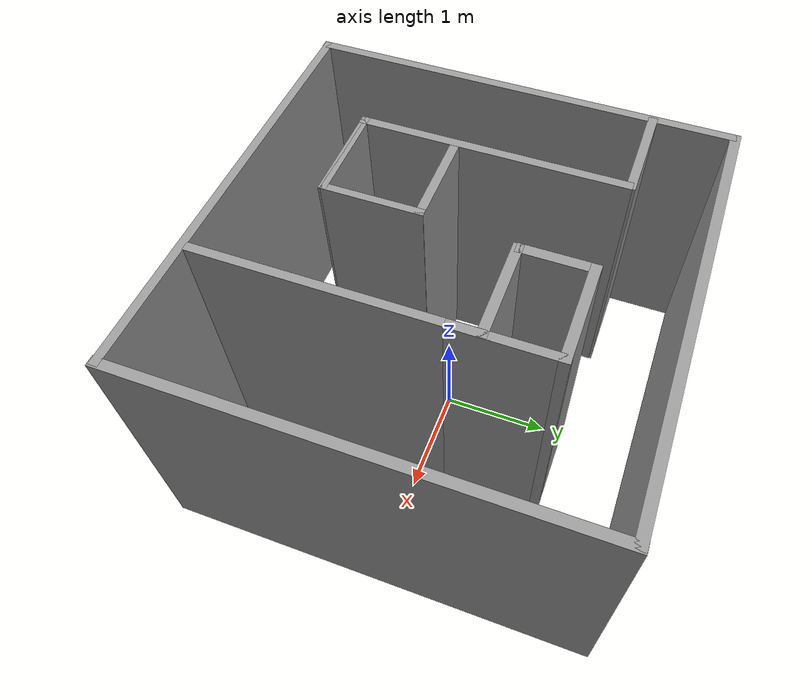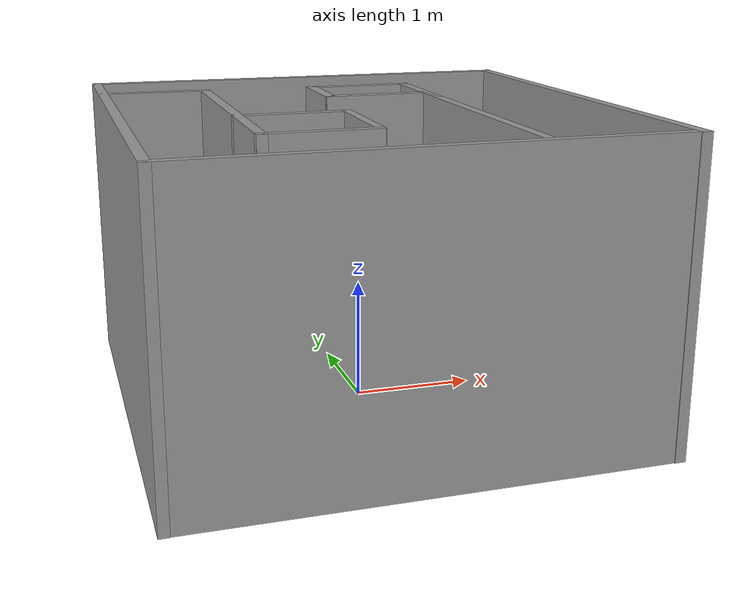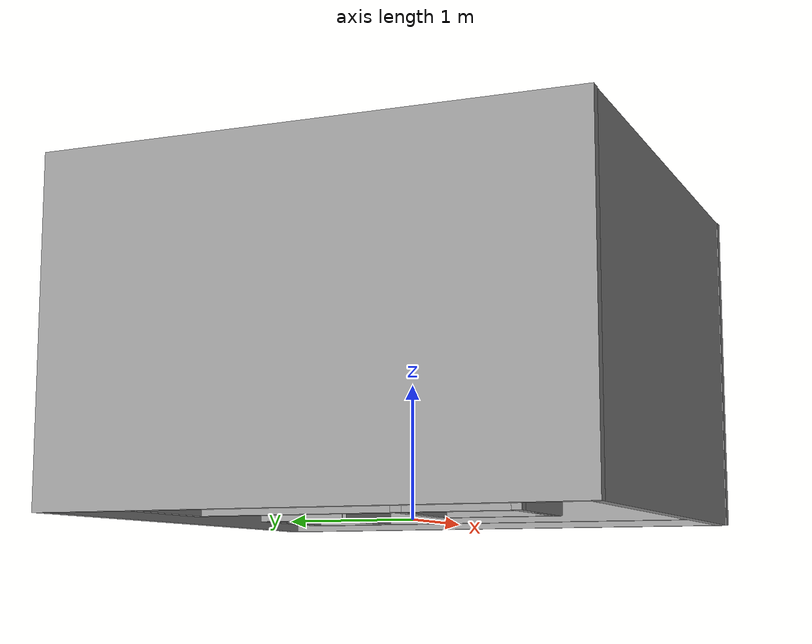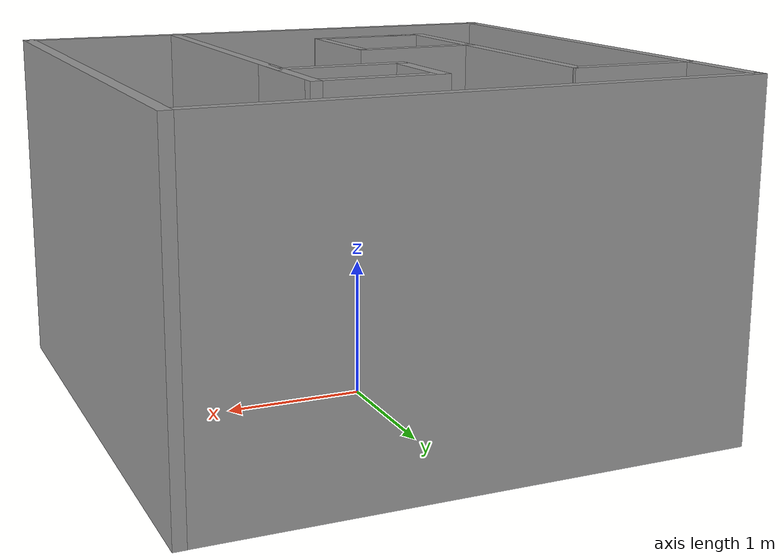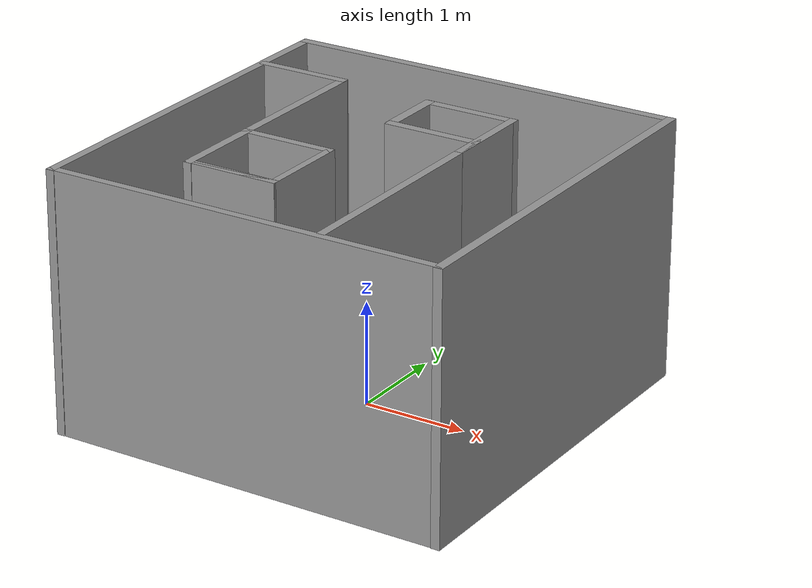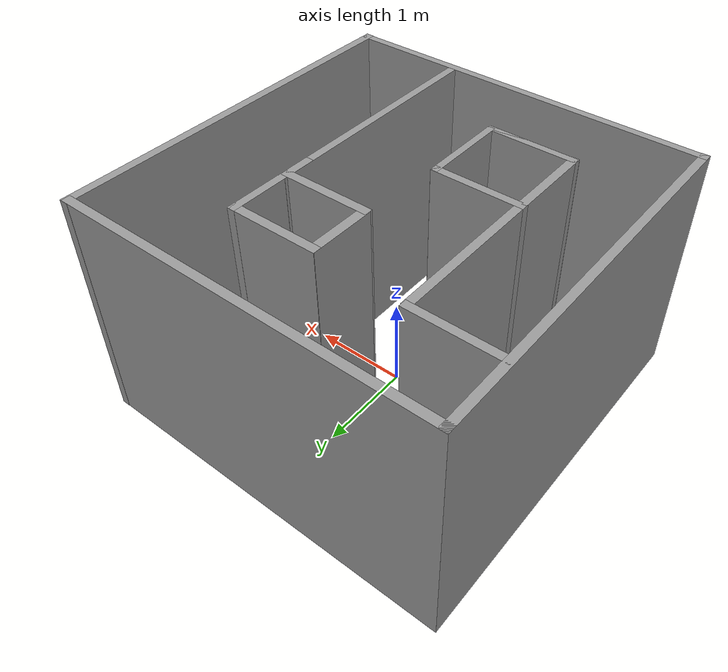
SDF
<?xml version='1.0'?>
<sdf version='1.7'>
  <model name='4x4_map'>
    <link name='Wall_13'>
      <pose>0 1.925 0 0 -0 0</pose>
      <self_collide>0</self_collide>
      <enable_wind>0</enable_wind>
      <kinematic>0</kinematic>
      <inertial>
        <inertia>
          <ixx>0</ixx>
          <ixy>0</ixy>
          <ixz>0</ixz>
          <iyy>0</iyy>
          <iyz>0</iyz>
          <izz>0</izz>
        </inertia>
        <mass>0</mass>
        <pose>0 0 0 0 -0 0</pose>
      </inertial>
      <visual name='Wall_13_Visual'>
        <pose>0 0 1.25 0 -0 0</pose>
        <geometry>
          <box>
            <size>3.9126 0.08902 2.5</size>
          </box>
        </geometry>
        <material>
          <script>
            <uri>file://media/materials/scripts/gazebo.material</uri>
            <name>Gazebo/Grey</name>
          </script>
          <ambient>1 1 1 1</ambient>
          <shader type='pixel'/>
        </material>
        <meta>
          <layer>0</layer>
        </meta>
        <transparency>0</transparency>
        <cast_shadows>1</cast_shadows>
      </visual>
      <collision name='Wall_13_Collision'>
        <laser_retro>0</laser_retro>
        <max_contacts>10</max_contacts>
        <pose>0 0 1.25 0 -0 0</pose>
        <geometry>
          <box>
            <size>3.9126 0.08902 2.5</size>
          </box>
        </geometry>
        <surface>
          <friction>
            <ode>
              <mu>1</mu>
              <mu2>1</mu2>
              <fdir1>0 0 0</fdir1>
              <slip1>0</slip1>
              <slip2>0</slip2>
            </ode>
            <torsional>
              <coefficient>1</coefficient>
              <patch_radius>0</patch_radius>
              <surface_radius>0</surface_radius>
              <use_patch_radius>1</use_patch_radius>
              <ode>
                <slip>0</slip>
              </ode>
            </torsional>
          </friction>
          <bounce>
            <restitution_coefficient>0</restitution_coefficient>
            <threshold>1e+06</threshold>
          </bounce>
          <contact>
            <collide_without_contact>0</collide_without_contact>
            <collide_without_contact_bitmask>1</collide_without_contact_bitmask>
            <collide_bitmask>1</collide_bitmask>
            <ode>
              <soft_cfm>0</soft_cfm>
              <soft_erp>0.2</soft_erp>
              <kp>1e+13</kp>
              <kd>1</kd>
              <max_vel>0.01</max_vel>
              <min_depth>0</min_depth>
            </ode>
            <bullet>
              <split_impulse>1</split_impulse>
              <split_impulse_penetration_threshold>-0.01</split_impulse_penetration_threshold>
              <soft_cfm>0</soft_cfm>
              <soft_erp>0.2</soft_erp>
              <kp>1e+13</kp>
              <kd>1</kd>
            </bullet>
          </contact>
        </surface>
      </collision>
    </link>
    <link name='Wall_15'>
      <pose>-1.91517 0 0 0 0 -1.5708</pose>
      <self_collide>0</self_collide>
      <enable_wind>0</enable_wind>
      <kinematic>0</kinematic>
      <inertial>
        <inertia>
          <ixx>0</ixx>
          <ixy>0</ixy>
          <ixz>0</ixz>
          <iyy>0</iyy>
          <iyz>0</iyz>
          <izz>0</izz>
        </inertia>
        <mass>0</mass>
        <pose>0 0 0 0 -0 0</pose>
      </inertial>
      <visual name='Wall_15_Visual'>
        <pose>0 0 1.25 0 -0 0</pose>
        <geometry>
          <box>
            <size>3.93883 0.082926 2.5</size>
          </box>
        </geometry>
        <material>
          <script>
            <uri>file://media/materials/scripts/gazebo.material</uri>
            <name>Gazebo/Grey</name>
          </script>
          <ambient>1 1 1 1</ambient>
          <shader type='pixel'/>
        </material>
        <meta>
          <layer>0</layer>
        </meta>
        <transparency>0</transparency>
        <cast_shadows>1</cast_shadows>
      </visual>
      <collision name='Wall_15_Collision'>
        <laser_retro>0</laser_retro>
        <max_contacts>10</max_contacts>
        <pose>0 0 1.25 0 -0 0</pose>
        <geometry>
          <box>
            <size>3.93883 0.082926 2.5</size>
          </box>
        </geometry>
        <surface>
          <friction>
            <ode>
              <mu>1</mu>
              <mu2>1</mu2>
              <fdir1>0 0 0</fdir1>
              <slip1>0</slip1>
              <slip2>0</slip2>
            </ode>
            <torsional>
              <coefficient>1</coefficient>
              <patch_radius>0</patch_radius>
              <surface_radius>0</surface_radius>
              <use_patch_radius>1</use_patch_radius>
              <ode>
                <slip>0</slip>
              </ode>
            </torsional>
          </friction>
          <bounce>
            <restitution_coefficient>0</restitution_coefficient>
            <threshold>1e+06</threshold>
          </bounce>
          <contact>
            <collide_without_contact>0</collide_without_contact>
            <collide_without_contact_bitmask>1</collide_without_contact_bitmask>
            <collide_bitmask>1</collide_bitmask>
            <ode>
              <soft_cfm>0</soft_cfm>
              <soft_erp>0.2</soft_erp>
              <kp>1e+13</kp>
              <kd>1</kd>
              <max_vel>0.01</max_vel>
              <min_depth>0</min_depth>
            </ode>
            <bullet>
              <split_impulse>1</split_impulse>
              <split_impulse_penetration_threshold>-0.01</split_impulse_penetration_threshold>
              <soft_cfm>0</soft_cfm>
              <soft_erp>0.2</soft_erp>
              <kp>1e+13</kp>
              <kd>1</kd>
            </bullet>
          </contact>
        </surface>
      </collision>
    </link>
    <link name='Wall_17'>
      <pose>0 -1.925 0 0 -0 0</pose>
      <self_collide>0</self_collide>
      <enable_wind>0</enable_wind>
      <kinematic>0</kinematic>
      <inertial>
        <inertia>
          <ixx>0</ixx>
          <ixy>0</ixy>
          <ixz>0</ixz>
          <iyy>0</iyy>
          <iyz>0</iyz>
          <izz>0</izz>
        </inertia>
        <mass>0</mass>
        <pose>0 0 0 0 -0 0</pose>
      </inertial>
      <visual name='Wall_17_Visual'>
        <pose>0 0 1.25 0 -0 0</pose>
        <geometry>
          <box>
            <size>3.90901 0.078188 2.5</size>
          </box>
        </geometry>
        <material>
          <script>
            <uri>file://media/materials/scripts/gazebo.material</uri>
            <name>Gazebo/Grey</name>
          </script>
          <ambient>1 1 1 1</ambient>
          <shader type='pixel'/>
        </material>
        <meta>
          <layer>0</layer>
        </meta>
        <transparency>0</transparency>
        <cast_shadows>1</cast_shadows>
      </visual>
      <collision name='Wall_17_Collision'>
        <laser_retro>0</laser_retro>
        <max_contacts>10</max_contacts>
        <pose>0 0 1.25 0 -0 0</pose>
        <geometry>
          <box>
            <size>3.90901 0.078188 2.5</size>
          </box>
        </geometry>
        <surface>
          <friction>
            <ode>
              <mu>1</mu>
              <mu2>1</mu2>
              <fdir1>0 0 0</fdir1>
              <slip1>0</slip1>
              <slip2>0</slip2>
            </ode>
            <torsional>
              <coefficient>1</coefficient>
              <patch_radius>0</patch_radius>
              <surface_radius>0</surface_radius>
              <use_patch_radius>1</use_patch_radius>
              <ode>
                <slip>0</slip>
              </ode>
            </torsional>
          </friction>
          <bounce>
            <restitution_coefficient>0</restitution_coefficient>
            <threshold>1e+06</threshold>
          </bounce>
          <contact>
            <collide_without_contact>0</collide_without_contact>
            <collide_without_contact_bitmask>1</collide_without_contact_bitmask>
            <collide_bitmask>1</collide_bitmask>
            <ode>
              <soft_cfm>0</soft_cfm>
              <soft_erp>0.2</soft_erp>
              <kp>1e+13</kp>
              <kd>1</kd>
              <max_vel>0.01</max_vel>
              <min_depth>0</min_depth>
            </ode>
            <bullet>
              <split_impulse>1</split_impulse>
              <split_impulse_penetration_threshold>-0.01</split_impulse_penetration_threshold>
              <soft_cfm>0</soft_cfm>
              <soft_erp>0.2</soft_erp>
              <kp>1e+13</kp>
              <kd>1</kd>
            </bullet>
          </contact>
        </surface>
      </collision>
    </link>
    <link name='Wall_19'>
      <pose>1.925 0 0 0 0 -1.5708</pose>
      <self_collide>0</self_collide>
      <enable_wind>0</enable_wind>
      <kinematic>0</kinematic>
      <inertial>
        <inertia>
          <ixx>0</ixx>
          <ixy>0</ixy>
          <ixz>0</ixz>
          <iyy>0</iyy>
          <iyz>0</iyz>
          <izz>0</izz>
        </inertia>
        <mass>0</mass>
        <pose>0 0 0 0 -0 0</pose>
      </inertial>
      <visual name='Wall_19_Visual'>
        <pose>0 0 1.25 0 -0 0</pose>
        <geometry>
          <box>
            <size>3.94266 0.08936 2.5</size>
          </box>
        </geometry>
        <material>
          <script>
            <uri>file://media/materials/scripts/gazebo.material</uri>
            <name>Gazebo/Grey</name>
          </script>
          <ambient>1 1 1 1</ambient>
          <shader type='pixel'/>
        </material>
        <meta>
          <layer>0</layer>
        </meta>
        <transparency>0</transparency>
        <cast_shadows>1</cast_shadows>
      </visual>
      <collision name='Wall_19_Collision'>
        <laser_retro>0</laser_retro>
        <max_contacts>10</max_contacts>
        <pose>0 0 1.25 0 -0 0</pose>
        <geometry>
          <box>
            <size>3.94266 0.08936 2.5</size>
          </box>
        </geometry>
        <surface>
          <friction>
            <ode>
              <mu>1</mu>
              <mu2>1</mu2>
              <fdir1>0 0 0</fdir1>
              <slip1>0</slip1>
              <slip2>0</slip2>
            </ode>
            <torsional>
              <coefficient>1</coefficient>
              <patch_radius>0</patch_radius>
              <surface_radius>0</surface_radius>
              <use_patch_radius>1</use_patch_radius>
              <ode>
                <slip>0</slip>
              </ode>
            </torsional>
          </friction>
          <bounce>
            <restitution_coefficient>0</restitution_coefficient>
            <threshold>1e+06</threshold>
          </bounce>
          <contact>
            <collide_without_contact>0</collide_without_contact>
            <collide_without_contact_bitmask>1</collide_without_contact_bitmask>
            <collide_bitmask>1</collide_bitmask>
            <ode>
              <soft_cfm>0</soft_cfm>
              <soft_erp>0.2</soft_erp>
              <kp>1e+13</kp>
              <kd>1</kd>
              <max_vel>0.01</max_vel>
              <min_depth>0</min_depth>
            </ode>
            <bullet>
              <split_impulse>1</split_impulse>
              <split_impulse_penetration_threshold>-0.01</split_impulse_penetration_threshold>
              <soft_cfm>0</soft_cfm>
              <soft_erp>0.2</soft_erp>
              <kp>1e+13</kp>
              <kd>1</kd>
            </bullet>
          </contact>
        </surface>
      </collision>
    </link>
    <link name='Wall_23'>
      <pose>-1.04066 0.009699 0 0 -0 1.5708</pose>
      <self_collide>0</self_collide>
      <enable_wind>0</enable_wind>
      <kinematic>0</kinematic>
      <inertial>
        <inertia>
          <ixx>0</ixx>
          <ixy>0</ixy>
          <ixz>0</ixz>
          <iyy>0</iyy>
          <iyz>0</iyz>
          <izz>0</izz>
        </inertia>
        <mass>0</mass>
        <pose>0 0 0 0 -0 0</pose>
      </inertial>
      <visual name='Wall_23_Visual'>
        <pose>0 0 1.25 0 -0 0</pose>
        <geometry>
          <box>
            <size>2.42952 0.083868 2.5</size>
          </box>
        </geometry>
        <material>
          <script>
            <uri>file://media/materials/scripts/gazebo.material</uri>
            <name>Gazebo/Grey</name>
          </script>
          <ambient>1 1 1 1</ambient>
          <shader type='pixel'/>
        </material>
        <meta>
          <layer>0</layer>
        </meta>
        <transparency>0</transparency>
        <cast_shadows>1</cast_shadows>
      </visual>
      <collision name='Wall_23_Collision'>
        <laser_retro>0</laser_retro>
        <max_contacts>10</max_contacts>
        <pose>0 0 1.25 0 -0 0</pose>
        <geometry>
          <box>
            <size>2.42952 0.083868 2.5</size>
          </box>
        </geometry>
        <surface>
          <friction>
            <ode>
              <mu>1</mu>
              <mu2>1</mu2>
              <fdir1>0 0 0</fdir1>
              <slip1>0</slip1>
              <slip2>0</slip2>
            </ode>
            <torsional>
              <coefficient>1</coefficient>
              <patch_radius>0</patch_radius>
              <surface_radius>0</surface_radius>
              <use_patch_radius>1</use_patch_radius>
              <ode>
                <slip>0</slip>
              </ode>
            </torsional>
          </friction>
          <bounce>
            <restitution_coefficient>0</restitution_coefficient>
            <threshold>1e+06</threshold>
          </bounce>
          <contact>
            <collide_without_contact>0</collide_without_contact>
            <collide_without_contact_bitmask>1</collide_without_contact_bitmask>
            <collide_bitmask>1</collide_bitmask>
            <ode>
              <soft_cfm>0</soft_cfm>
              <soft_erp>0.2</soft_erp>
              <kp>1e+13</kp>
              <kd>1</kd>
              <max_vel>0.01</max_vel>
              <min_depth>0</min_depth>
            </ode>
            <bullet>
              <split_impulse>1</split_impulse>
              <split_impulse_penetration_threshold>-0.01</split_impulse_penetration_threshold>
              <soft_cfm>0</soft_cfm>
              <soft_erp>0.2</soft_erp>
              <kp>1e+13</kp>
              <kd>1</kd>
            </bullet>
          </contact>
        </surface>
      </collision>
    </link>
    <link name='Wall_25'>
      <pose>-1.46928 1.20838 0 0 -0 0</pose>
      <self_collide>0</self_collide>
      <enable_wind>0</enable_wind>
      <kinematic>0</kinematic>
      <inertial>
        <inertia>
          <ixx>0</ixx>
          <ixy>0</ixy>
          <ixz>0</ixz>
          <iyy>0</iyy>
          <iyz>0</iyz>
          <izz>0</izz>
        </inertia>
        <mass>0</mass>
        <pose>0 0 0 0 -0 0</pose>
      </inertial>
      <visual name='Wall_25_Visual'>
        <pose>0 0 1.25 0 -0 0</pose>
        <geometry>
          <box>
            <size>0.930075 0.081734 2.5</size>
          </box>
        </geometry>
        <material>
          <script>
            <uri>file://media/materials/scripts/gazebo.material</uri>
            <name>Gazebo/Grey</name>
          </script>
          <ambient>1 1 1 1</ambient>
          <shader type='pixel'/>
        </material>
        <meta>
          <layer>0</layer>
        </meta>
        <transparency>0</transparency>
        <cast_shadows>1</cast_shadows>
      </visual>
      <collision name='Wall_25_Collision'>
        <laser_retro>0</laser_retro>
        <max_contacts>10</max_contacts>
        <pose>0 0 1.25 0 -0 0</pose>
        <geometry>
          <box>
            <size>0.930075 0.081734 2.5</size>
          </box>
        </geometry>
        <surface>
          <friction>
            <ode>
              <mu>1</mu>
              <mu2>1</mu2>
              <fdir1>0 0 0</fdir1>
              <slip1>0</slip1>
              <slip2>0</slip2>
            </ode>
            <torsional>
              <coefficient>1</coefficient>
              <patch_radius>0</patch_radius>
              <surface_radius>0</surface_radius>
              <use_patch_radius>1</use_patch_radius>
              <ode>
                <slip>0</slip>
              </ode>
            </torsional>
          </friction>
          <bounce>
            <restitution_coefficient>0</restitution_coefficient>
            <threshold>1e+06</threshold>
          </bounce>
          <contact>
            <collide_without_contact>0</collide_without_contact>
            <collide_without_contact_bitmask>1</collide_without_contact_bitmask>
            <collide_bitmask>1</collide_bitmask>
            <ode>
              <soft_cfm>0</soft_cfm>
              <soft_erp>0.2</soft_erp>
              <kp>1e+13</kp>
              <kd>1</kd>
              <max_vel>0.01</max_vel>
              <min_depth>0</min_depth>
            </ode>
            <bullet>
              <split_impulse>1</split_impulse>
              <split_impulse_penetration_threshold>-0.01</split_impulse_penetration_threshold>
              <soft_cfm>0</soft_cfm>
              <soft_erp>0.2</soft_erp>
              <kp>1e+13</kp>
              <kd>1</kd>
            </bullet>
          </contact>
        </surface>
      </collision>
    </link>
    <link name='Wall_27'>
      <pose>-0.61566 -1.1653 0 0 -0 3.14159</pose>
      <self_collide>0</self_collide>
      <enable_wind>0</enable_wind>
      <kinematic>0</kinematic>
      <inertial>
        <inertia>
          <ixx>0</ixx>
          <ixy>0</ixy>
          <ixz>0</ixz>
          <iyy>0</iyy>
          <iyz>0</iyz>
          <izz>0</izz>
        </inertia>
        <mass>0</mass>
        <pose>0 0 0 0 -0 0</pose>
      </inertial>
      <visual name='Wall_27_Visual'>
        <pose>0 0 1.25 0 -0 0</pose>
        <geometry>
          <box>
            <size>0.928996 0.070366 2.5</size>
          </box>
        </geometry>
        <material>
          <script>
            <uri>file://media/materials/scripts/gazebo.material</uri>
            <name>Gazebo/Grey</name>
          </script>
          <ambient>1 1 1 1</ambient>
          <shader type='pixel'/>
        </material>
        <meta>
          <layer>0</layer>
        </meta>
        <transparency>0</transparency>
        <cast_shadows>1</cast_shadows>
      </visual>
      <collision name='Wall_27_Collision'>
        <laser_retro>0</laser_retro>
        <max_contacts>10</max_contacts>
        <pose>0 0 1.25 0 -0 0</pose>
        <geometry>
          <box>
            <size>0.928996 0.070366 2.5</size>
          </box>
        </geometry>
        <surface>
          <friction>
            <ode>
              <mu>1</mu>
              <mu2>1</mu2>
              <fdir1>0 0 0</fdir1>
              <slip1>0</slip1>
              <slip2>0</slip2>
            </ode>
            <torsional>
              <coefficient>1</coefficient>
              <patch_radius>0</patch_radius>
              <surface_radius>0</surface_radius>
              <use_patch_radius>1</use_patch_radius>
              <ode>
                <slip>0</slip>
              </ode>
            </torsional>
          </friction>
          <bounce>
            <restitution_coefficient>0</restitution_coefficient>
            <threshold>1e+06</threshold>
          </bounce>
          <contact>
            <collide_without_contact>0</collide_without_contact>
            <collide_without_contact_bitmask>1</collide_without_contact_bitmask>
            <collide_bitmask>1</collide_bitmask>
            <ode>
              <soft_cfm>0</soft_cfm>
              <soft_erp>0.2</soft_erp>
              <kp>1e+13</kp>
              <kd>1</kd>
              <max_vel>0.01</max_vel>
              <min_depth>0</min_depth>
            </ode>
            <bullet>
              <split_impulse>1</split_impulse>
              <split_impulse_penetration_threshold>-0.01</split_impulse_penetration_threshold>
              <soft_cfm>0</soft_cfm>
              <soft_erp>0.2</soft_erp>
              <kp>1e+13</kp>
              <kd>1</kd>
            </bullet>
          </contact>
        </surface>
      </collision>
    </link>
    <link name='Wall_28'>
      <pose>-0.61566 -1.1653 0 0 -0 0</pose>
      <self_collide>0</self_collide>
      <enable_wind>0</enable_wind>
      <kinematic>0</kinematic>
      <inertial>
        <inertia>
          <ixx>0</ixx>
          <ixy>0</ixy>
          <ixz>0</ixz>
          <iyy>0</iyy>
          <iyz>0</iyz>
          <izz>0</izz>
        </inertia>
        <mass>0</mass>
        <pose>0 0 0 0 -0 0</pose>
      </inertial>
      <visual name='Wall_28_Visual'>
        <pose>0 0 1.25 0 -0 0</pose>
        <geometry>
          <box>
            <size>0.934271 0.069938 2.5</size>
          </box>
        </geometry>
        <material>
          <script>
            <uri>file://media/materials/scripts/gazebo.material</uri>
            <name>Gazebo/Grey</name>
          </script>
          <ambient>1 1 1 1</ambient>
          <shader type='pixel'/>
        </material>
        <meta>
          <layer>0</layer>
        </meta>
        <transparency>0</transparency>
        <cast_shadows>1</cast_shadows>
      </visual>
      <collision name='Wall_28_Collision'>
        <laser_retro>0</laser_retro>
        <max_contacts>10</max_contacts>
        <pose>0 0 1.25 0 -0 0</pose>
        <geometry>
          <box>
            <size>0.934271 0.069938 2.5</size>
          </box>
        </geometry>
        <surface>
          <friction>
            <ode>
              <mu>1</mu>
              <mu2>1</mu2>
              <fdir1>0 0 0</fdir1>
              <slip1>0</slip1>
              <slip2>0</slip2>
            </ode>
            <torsional>
              <coefficient>1</coefficient>
              <patch_radius>0</patch_radius>
              <surface_radius>0</surface_radius>
              <use_patch_radius>1</use_patch_radius>
              <ode>
                <slip>0</slip>
              </ode>
            </torsional>
          </friction>
          <bounce>
            <restitution_coefficient>0</restitution_coefficient>
            <threshold>1e+06</threshold>
          </bounce>
          <contact>
            <collide_without_contact>0</collide_without_contact>
            <collide_without_contact_bitmask>1</collide_without_contact_bitmask>
            <collide_bitmask>1</collide_bitmask>
            <ode>
              <soft_cfm>0</soft_cfm>
              <soft_erp>0.2</soft_erp>
              <kp>1e+13</kp>
              <kd>1</kd>
              <max_vel>0.01</max_vel>
              <min_depth>0</min_depth>
            </ode>
            <bullet>
              <split_impulse>1</split_impulse>
              <split_impulse_penetration_threshold>-0.01</split_impulse_penetration_threshold>
              <soft_cfm>0</soft_cfm>
              <soft_erp>0.2</soft_erp>
              <kp>1e+13</kp>
              <kd>1</kd>
            </bullet>
          </contact>
        </surface>
      </collision>
    </link>
    <link name='Wall_31'>
      <pose>-0.181181 -0.728706 0 0 -0 1.5708</pose>
      <self_collide>0</self_collide>
      <enable_wind>0</enable_wind>
      <kinematic>0</kinematic>
      <inertial>
        <inertia>
          <ixx>0</ixx>
          <ixy>0</ixy>
          <ixz>0</ixz>
          <iyy>0</iyy>
          <iyz>0</iyz>
          <izz>0</izz>
        </inertia>
        <mass>0</mass>
        <pose>0 0 0 0 -0 0</pose>
      </inertial>
      <visual name='Wall_31_Visual'>
        <pose>0 0 1.25 0 -0 0</pose>
        <geometry>
          <box>
            <size>0.903345 0.069941 2.5</size>
          </box>
        </geometry>
        <material>
          <script>
            <uri>file://media/materials/scripts/gazebo.material</uri>
            <name>Gazebo/Grey</name>
          </script>
          <ambient>1 1 1 1</ambient>
          <shader type='pixel'/>
        </material>
        <meta>
          <layer>0</layer>
        </meta>
        <transparency>0</transparency>
        <cast_shadows>1</cast_shadows>
      </visual>
      <collision name='Wall_31_Collision'>
        <laser_retro>0</laser_retro>
        <max_contacts>10</max_contacts>
        <pose>0 0 1.25 0 -0 0</pose>
        <geometry>
          <box>
            <size>0.903345 0.069941 2.5</size>
          </box>
        </geometry>
        <surface>
          <friction>
            <ode>
              <mu>1</mu>
              <mu2>1</mu2>
              <fdir1>0 0 0</fdir1>
              <slip1>0</slip1>
              <slip2>0</slip2>
            </ode>
            <torsional>
              <coefficient>1</coefficient>
              <patch_radius>0</patch_radius>
              <surface_radius>0</surface_radius>
              <use_patch_radius>1</use_patch_radius>
              <ode>
                <slip>0</slip>
              </ode>
            </torsional>
          </friction>
          <bounce>
            <restitution_coefficient>0</restitution_coefficient>
            <threshold>1e+06</threshold>
          </bounce>
          <contact>
            <collide_without_contact>0</collide_without_contact>
            <collide_without_contact_bitmask>1</collide_without_contact_bitmask>
            <collide_bitmask>1</collide_bitmask>
            <ode>
              <soft_cfm>0</soft_cfm>
              <soft_erp>0.2</soft_erp>
              <kp>1e+13</kp>
              <kd>1</kd>
              <max_vel>0.01</max_vel>
              <min_depth>0</min_depth>
            </ode>
            <bullet>
              <split_impulse>1</split_impulse>
              <split_impulse_penetration_threshold>-0.01</split_impulse_penetration_threshold>
              <soft_cfm>0</soft_cfm>
              <soft_erp>0.2</soft_erp>
              <kp>1e+13</kp>
              <kd>1</kd>
            </bullet>
          </contact>
        </surface>
      </collision>
    </link>
    <link name='Wall_32'>
      <pose>-0.61566 -0.315301 0 0 -0 3.14159</pose>
      <self_collide>0</self_collide>
      <enable_wind>0</enable_wind>
      <kinematic>0</kinematic>
      <inertial>
        <inertia>
          <ixx>0</ixx>
          <ixy>0</ixy>
          <ixz>0</ixz>
          <iyy>0</iyy>
          <iyz>0</iyz>
          <izz>0</izz>
        </inertia>
        <mass>0</mass>
        <pose>0 0 0 0 -0 0</pose>
      </inertial>
      <visual name='Wall_32_Visual'>
        <pose>0 0 1.25 0 -0 0</pose>
        <geometry>
          <box>
            <size>0.93428 0.080387 2.5</size>
          </box>
        </geometry>
        <material>
          <script>
            <uri>file://media/materials/scripts/gazebo.material</uri>
            <name>Gazebo/Grey</name>
          </script>
          <ambient>1 1 1 1</ambient>
          <shader type='pixel'/>
        </material>
        <meta>
          <layer>0</layer>
        </meta>
        <transparency>0</transparency>
        <cast_shadows>1</cast_shadows>
      </visual>
      <collision name='Wall_32_Collision'>
        <laser_retro>0</laser_retro>
        <max_contacts>10</max_contacts>
        <pose>0 0 1.25 0 -0 0</pose>
        <geometry>
          <box>
            <size>0.93428 0.080387 2.5</size>
          </box>
        </geometry>
        <surface>
          <friction>
            <ode>
              <mu>1</mu>
              <mu2>1</mu2>
              <fdir1>0 0 0</fdir1>
              <slip1>0</slip1>
              <slip2>0</slip2>
            </ode>
            <torsional>
              <coefficient>1</coefficient>
              <patch_radius>0</patch_radius>
              <surface_radius>0</surface_radius>
              <use_patch_radius>1</use_patch_radius>
              <ode>
                <slip>0</slip>
              </ode>
            </torsional>
          </friction>
          <bounce>
            <restitution_coefficient>0</restitution_coefficient>
            <threshold>1e+06</threshold>
          </bounce>
          <contact>
            <collide_without_contact>0</collide_without_contact>
            <collide_without_contact_bitmask>1</collide_without_contact_bitmask>
            <collide_bitmask>1</collide_bitmask>
            <ode>
              <soft_cfm>0</soft_cfm>
              <soft_erp>0.2</soft_erp>
              <kp>1e+13</kp>
              <kd>1</kd>
              <max_vel>0.01</max_vel>
              <min_depth>0</min_depth>
            </ode>
            <bullet>
              <split_impulse>1</split_impulse>
              <split_impulse_penetration_threshold>-0.01</split_impulse_penetration_threshold>
              <soft_cfm>0</soft_cfm>
              <soft_erp>0.2</soft_erp>
              <kp>1e+13</kp>
              <kd>1</kd>
            </bullet>
          </contact>
        </surface>
      </collision>
    </link>
    <link name='Wall_34'>
      <pose>0.774577 -0.646068 0 0 -0 1.5708</pose>
      <self_collide>0</self_collide>
      <enable_wind>0</enable_wind>
      <kinematic>0</kinematic>
      <inertial>
        <inertia>
          <ixx>0</ixx>
          <ixy>0</ixy>
          <ixz>0</ixz>
          <iyy>0</iyy>
          <iyz>0</iyz>
          <izz>0</izz>
        </inertia>
        <mass>0</mass>
        <pose>0 0 0 0 -0 0</pose>
      </inertial>
      <visual name='Wall_34_Visual'>
        <pose>0 0 1.25 0 -0 0</pose>
        <geometry>
          <box>
            <size>2.5 0.080813 2.5</size>
          </box>
        </geometry>
        <material>
          <script>
            <uri>file://media/materials/scripts/gazebo.material</uri>
            <name>Gazebo/Grey</name>
          </script>
          <ambient>1 1 1 1</ambient>
          <shader type='pixel'/>
        </material>
        <meta>
          <layer>0</layer>
        </meta>
        <transparency>0</transparency>
        <cast_shadows>1</cast_shadows>
      </visual>
      <collision name='Wall_34_Collision'>
        <laser_retro>0</laser_retro>
        <max_contacts>10</max_contacts>
        <pose>0 0 1.25 0 -0 0</pose>
        <geometry>
          <box>
            <size>2.5 0.080813 2.5</size>
          </box>
        </geometry>
        <surface>
          <friction>
            <ode>
              <mu>1</mu>
              <mu2>1</mu2>
              <fdir1>0 0 0</fdir1>
              <slip1>0</slip1>
              <slip2>0</slip2>
            </ode>
            <torsional>
              <coefficient>1</coefficient>
              <patch_radius>0</patch_radius>
              <surface_radius>0</surface_radius>
              <use_patch_radius>1</use_patch_radius>
              <ode>
                <slip>0</slip>
              </ode>
            </torsional>
          </friction>
          <bounce>
            <restitution_coefficient>0</restitution_coefficient>
            <threshold>1e+06</threshold>
          </bounce>
          <contact>
            <collide_without_contact>0</collide_without_contact>
            <collide_without_contact_bitmask>1</collide_without_contact_bitmask>
            <collide_bitmask>1</collide_bitmask>
            <ode>
              <soft_cfm>0</soft_cfm>
              <soft_erp>0.2</soft_erp>
              <kp>1e+13</kp>
              <kd>1</kd>
              <max_vel>0.01</max_vel>
              <min_depth>0</min_depth>
            </ode>
            <bullet>
              <split_impulse>1</split_impulse>
              <split_impulse_penetration_threshold>-0.01</split_impulse_penetration_threshold>
              <soft_cfm>0</soft_cfm>
              <soft_erp>0.2</soft_erp>
              <kp>1e+13</kp>
              <kd>1</kd>
            </bullet>
          </contact>
        </surface>
      </collision>
    </link>
    <link name='Wall_36'>
      <pose>0.341076 0.528932 0 0 -0 3.14159</pose>
      <self_collide>0</self_collide>
      <enable_wind>0</enable_wind>
      <kinematic>0</kinematic>
      <inertial>
        <inertia>
          <ixx>0</ixx>
          <ixy>0</ixy>
          <ixz>0</ixz>
          <iyy>0</iyy>
          <iyz>0</iyz>
          <izz>0</izz>
        </inertia>
        <mass>0</mass>
        <pose>0 0 0 0 -0 0</pose>
      </inertial>
      <visual name='Wall_36_Visual'>
        <pose>0 0 1.25 0 -0 0</pose>
        <geometry>
          <box>
            <size>0.939484 0.090047 2.5</size>
          </box>
        </geometry>
        <material>
          <script>
            <uri>file://media/materials/scripts/gazebo.material</uri>
            <name>Gazebo/Grey</name>
          </script>
          <ambient>1 1 1 1</ambient>
          <shader type='pixel'/>
        </material>
        <meta>
          <layer>0</layer>
        </meta>
        <transparency>0</transparency>
        <cast_shadows>1</cast_shadows>
      </visual>
      <collision name='Wall_36_Collision'>
        <laser_retro>0</laser_retro>
        <max_contacts>10</max_contacts>
        <pose>0 0 1.25 0 -0 0</pose>
        <geometry>
          <box>
            <size>0.939484 0.090047 2.5</size>
          </box>
        </geometry>
        <surface>
          <friction>
            <ode>
              <mu>1</mu>
              <mu2>1</mu2>
              <fdir1>0 0 0</fdir1>
              <slip1>0</slip1>
              <slip2>0</slip2>
            </ode>
            <torsional>
              <coefficient>1</coefficient>
              <patch_radius>0</patch_radius>
              <surface_radius>0</surface_radius>
              <use_patch_radius>1</use_patch_radius>
              <ode>
                <slip>0</slip>
              </ode>
            </torsional>
          </friction>
          <bounce>
            <restitution_coefficient>0</restitution_coefficient>
            <threshold>1e+06</threshold>
          </bounce>
          <contact>
            <collide_without_contact>0</collide_without_contact>
            <collide_without_contact_bitmask>1</collide_without_contact_bitmask>
            <collide_bitmask>1</collide_bitmask>
            <ode>
              <soft_cfm>0</soft_cfm>
              <soft_erp>0.2</soft_erp>
              <kp>1e+13</kp>
              <kd>1</kd>
              <max_vel>0.01</max_vel>
              <min_depth>0</min_depth>
            </ode>
            <bullet>
              <split_impulse>1</split_impulse>
              <split_impulse_penetration_threshold>-0.01</split_impulse_penetration_threshold>
              <soft_cfm>0</soft_cfm>
              <soft_erp>0.2</soft_erp>
              <kp>1e+13</kp>
              <kd>1</kd>
            </bullet>
          </contact>
        </surface>
      </collision>
    </link>
    <link name='Wall_39'>
      <pose>-0.087785 0.851529 0 0 -0 1.5708</pose>
      <self_collide>0</self_collide>
      <enable_wind>0</enable_wind>
      <kinematic>0</kinematic>
      <inertial>
        <inertia>
          <ixx>0</ixx>
          <ixy>0</ixy>
          <ixz>0</ixz>
          <iyy>0</iyy>
          <iyz>0</iyz>
          <izz>0</izz>
        </inertia>
        <mass>0</mass>
        <pose>0 0 0 0 -0 0</pose>
      </inertial>
      <visual name='Wall_39_Visual'>
        <pose>0 0 1.25 0 -0 0</pose>
        <geometry>
          <box>
            <size>0.675933 0.095419 2.5</size>
          </box>
        </geometry>
        <material>
          <script>
            <uri>file://media/materials/scripts/gazebo.material</uri>
            <name>Gazebo/Grey</name>
          </script>
          <ambient>1 1 1 1</ambient>
          <shader type='pixel'/>
        </material>
        <meta>
          <layer>0</layer>
        </meta>
        <transparency>0</transparency>
        <cast_shadows>1</cast_shadows>
      </visual>
      <collision name='Wall_39_Collision'>
        <laser_retro>0</laser_retro>
        <max_contacts>10</max_contacts>
        <pose>0 0 1.25 0 -0 0</pose>
        <geometry>
          <box>
            <size>0.675933 0.095419 2.5</size>
          </box>
        </geometry>
        <surface>
          <friction>
            <ode>
              <mu>1</mu>
              <mu2>1</mu2>
              <fdir1>0 0 0</fdir1>
              <slip1>0</slip1>
              <slip2>0</slip2>
            </ode>
            <torsional>
              <coefficient>1</coefficient>
              <patch_radius>0</patch_radius>
              <surface_radius>0</surface_radius>
              <use_patch_radius>1</use_patch_radius>
              <ode>
                <slip>0</slip>
              </ode>
            </torsional>
          </friction>
          <bounce>
            <restitution_coefficient>0</restitution_coefficient>
            <threshold>1e+06</threshold>
          </bounce>
          <contact>
            <collide_without_contact>0</collide_without_contact>
            <collide_without_contact_bitmask>1</collide_without_contact_bitmask>
            <collide_bitmask>1</collide_bitmask>
            <ode>
              <soft_cfm>0</soft_cfm>
              <soft_erp>0.2</soft_erp>
              <kp>1e+13</kp>
              <kd>1</kd>
              <max_vel>0.01</max_vel>
              <min_depth>0</min_depth>
            </ode>
            <bullet>
              <split_impulse>1</split_impulse>
              <split_impulse_penetration_threshold>-0.01</split_impulse_penetration_threshold>
              <soft_cfm>0</soft_cfm>
              <soft_erp>0.2</soft_erp>
              <kp>1e+13</kp>
              <kd>1</kd>
            </bullet>
          </contact>
        </surface>
      </collision>
    </link>
    <link name='Wall_48'>
      <pose>0.341076 1.14765 0 0 -0 0</pose>
      <self_collide>0</self_collide>
      <enable_wind>0</enable_wind>
      <kinematic>0</kinematic>
      <inertial>
        <inertia>
          <ixx>0</ixx>
          <ixy>0</ixy>
          <ixz>0</ixz>
          <iyy>0</iyy>
          <iyz>0</iyz>
          <izz>0</izz>
        </inertia>
        <mass>0</mass>
        <pose>0 0 0 0 -0 0</pose>
      </inertial>
      <visual name='Wall_48_Visual'>
        <pose>0 0 1.25 0 -0 0</pose>
        <geometry>
          <box>
            <size>0.95021 0.089805 2.5</size>
          </box>
        </geometry>
        <material>
          <script>
            <uri>file://media/materials/scripts/gazebo.material</uri>
            <name>Gazebo/Grey</name>
          </script>
          <ambient>1 1 1 1</ambient>
          <shader type='pixel'/>
        </material>
        <meta>
          <layer>0</layer>
        </meta>
        <transparency>0</transparency>
        <cast_shadows>1</cast_shadows>
      </visual>
      <collision name='Wall_48_Collision'>
        <laser_retro>0</laser_retro>
        <max_contacts>10</max_contacts>
        <pose>0 0 1.25 0 -0 0</pose>
        <geometry>
          <box>
            <size>0.95021 0.089805 2.5</size>
          </box>
        </geometry>
        <surface>
          <friction>
            <ode>
              <mu>1</mu>
              <mu2>1</mu2>
              <fdir1>0 0 0</fdir1>
              <slip1>0</slip1>
              <slip2>0</slip2>
            </ode>
            <torsional>
              <coefficient>1</coefficient>
              <patch_radius>0</patch_radius>
              <surface_radius>0</surface_radius>
              <use_patch_radius>1</use_patch_radius>
              <ode>
                <slip>0</slip>
              </ode>
            </torsional>
          </friction>
          <bounce>
            <restitution_coefficient>0</restitution_coefficient>
            <threshold>1e+06</threshold>
          </bounce>
          <contact>
            <collide_without_contact>0</collide_without_contact>
            <collide_without_contact_bitmask>1</collide_without_contact_bitmask>
            <collide_bitmask>1</collide_bitmask>
            <ode>
              <soft_cfm>0</soft_cfm>
              <soft_erp>0.2</soft_erp>
              <kp>1e+13</kp>
              <kd>1</kd>
              <max_vel>0.01</max_vel>
              <min_depth>0</min_depth>
            </ode>
            <bullet>
              <split_impulse>1</split_impulse>
              <split_impulse_penetration_threshold>-0.01</split_impulse_penetration_threshold>
              <soft_cfm>0</soft_cfm>
              <soft_erp>0.2</soft_erp>
              <kp>1e+13</kp>
              <kd>1</kd>
            </bullet>
          </contact>
        </surface>
      </collision>
    </link>
    <link name='Wall_49'>
      <pose>0.775508 0.718186 0 0 0 -1.5708</pose>
      <self_collide>0</self_collide>
      <enable_wind>0</enable_wind>
      <kinematic>0</kinematic>
      <inertial>
        <inertia>
          <ixx>0</ixx>
          <ixy>0</ixy>
          <ixz>0</ixz>
          <iyy>0</iyy>
          <iyz>0</iyz>
          <izz>0</izz>
        </inertia>
        <mass>0</mass>
        <pose>0 0 0 0 -0 0</pose>
      </inertial>
      <visual name='Wall_49_Visual'>
        <pose>0 0 1.25 0 -0 0</pose>
        <geometry>
          <box>
            <size>0.949752 0.080696 2.5</size>
          </box>
        </geometry>
        <material>
          <script>
            <uri>file://media/materials/scripts/gazebo.material</uri>
            <name>Gazebo/Grey</name>
          </script>
          <ambient>1 1 1 1</ambient>
          <shader type='pixel'/>
        </material>
        <meta>
          <layer>0</layer>
        </meta>
        <transparency>0</transparency>
        <cast_shadows>1</cast_shadows>
      </visual>
      <collision name='Wall_49_Collision'>
        <laser_retro>0</laser_retro>
        <max_contacts>10</max_contacts>
        <pose>0 0 1.25 0 -0 0</pose>
        <geometry>
          <box>
            <size>0.949752 0.080696 2.5</size>
          </box>
        </geometry>
        <surface>
          <friction>
            <ode>
              <mu>1</mu>
              <mu2>1</mu2>
              <fdir1>0 0 0</fdir1>
              <slip1>0</slip1>
              <slip2>0</slip2>
            </ode>
            <torsional>
              <coefficient>1</coefficient>
              <patch_radius>0</patch_radius>
              <surface_radius>0</surface_radius>
              <use_patch_radius>1</use_patch_radius>
              <ode>
                <slip>0</slip>
              </ode>
            </torsional>
          </friction>
          <bounce>
            <restitution_coefficient>0</restitution_coefficient>
            <threshold>1e+06</threshold>
          </bounce>
          <contact>
            <collide_without_contact>0</collide_without_contact>
            <collide_without_contact_bitmask>1</collide_without_contact_bitmask>
            <collide_bitmask>1</collide_bitmask>
            <ode>
              <soft_cfm>0</soft_cfm>
              <soft_erp>0.2</soft_erp>
              <kp>1e+13</kp>
              <kd>1</kd>
              <max_vel>0.01</max_vel>
              <min_depth>0</min_depth>
            </ode>
            <bullet>
              <split_impulse>1</split_impulse>
              <split_impulse_penetration_threshold>-0.01</split_impulse_penetration_threshold>
              <soft_cfm>0</soft_cfm>
              <soft_erp>0.2</soft_erp>
              <kp>1e+13</kp>
              <kd>1</kd>
            </bullet>
          </contact>
        </surface>
      </collision>
    </link>
    <static>1</static>
    <allow_auto_disable>1</allow_auto_disable>
  </model>
</sdf>
